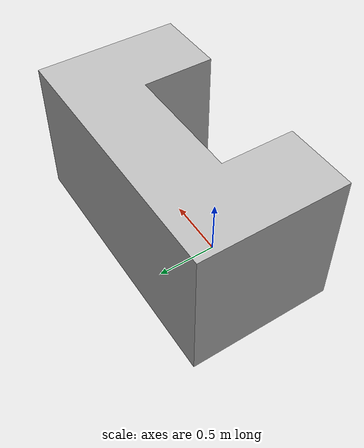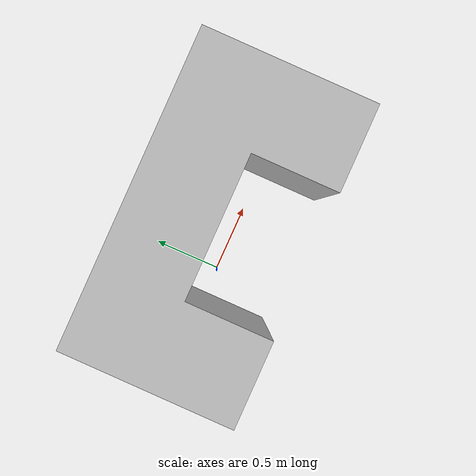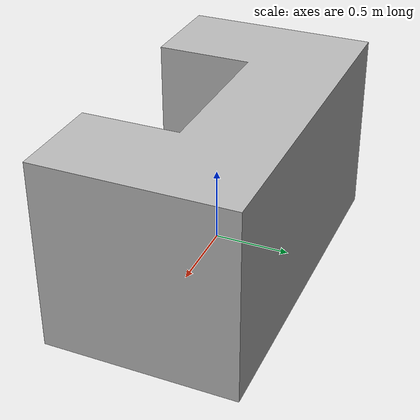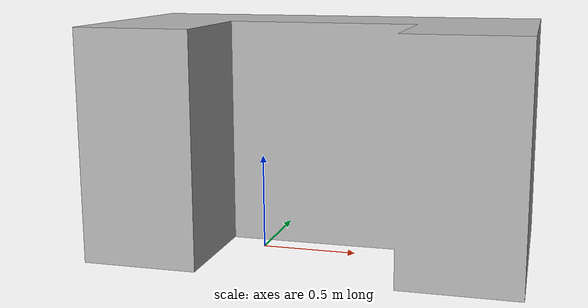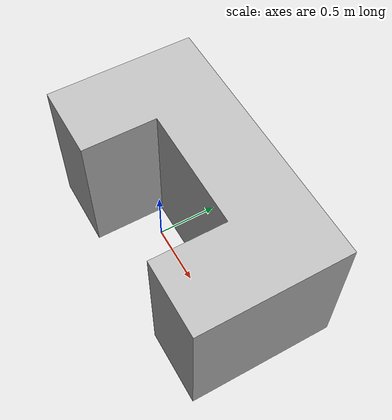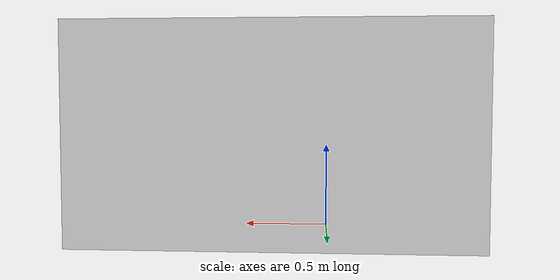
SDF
<?xml version="1.0" ?>
<sdf version="1.5">
  <model name='obs031'>
    <static>true</static>
    <link name="link">
      <collision name='collision'>
        <geometry>
          <mesh>
            <uri>model://obs03/mesh/Obs03.stl</uri>
            <scale>0.01 0.01 0.01</scale>
          </mesh>
        </geometry>
      </collision>

      <visual name='visual'>
        <geometry>
          <mesh>
            <uri>model://obs03/mesh/Obs03.stl</uri>
            <scale>0.01 0.01 0.01</scale>
          </mesh>
        </geometry>
        <material>
          <script>
            <uri>model://obs03/materials/scripts</uri>
            <uri>model://obs03/materials/textures</uri>
            <name>buildMat/Tex3</name>
          </script>
        </material>
      </visual>
    </link>
  </model>
</sdf>
